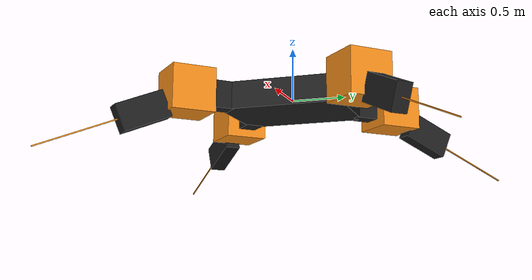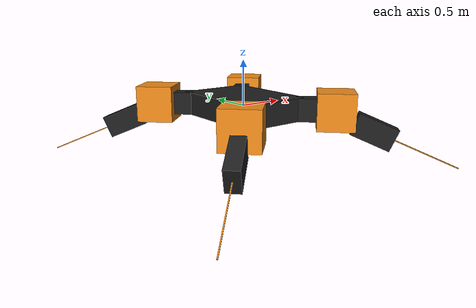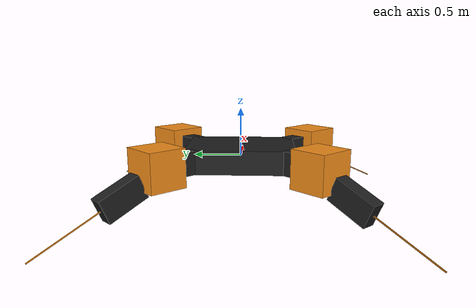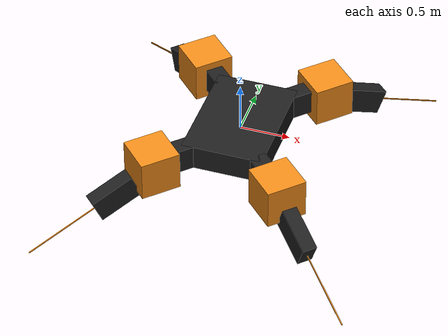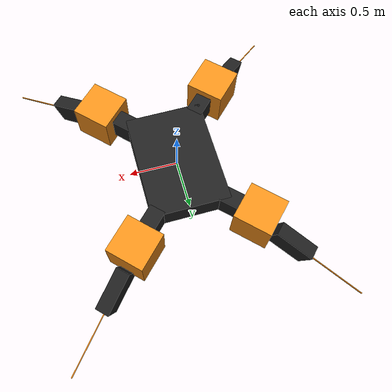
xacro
<?xml version="1.0"?>
<!-- Revolute-Revolute Manipulator -->
<robot name="rupert" xmlns:xacro="http://www.ros.org/wiki/xacro">

  <!-- Constants for robot dimensions -->
  <xacro:property name="PI" value="3.1415926535897931"/>
  <xacro:property name="mass" value="1" /> <!-- arbitrary value for mass -->
  <xacro:property name="width" value="0.1" /> <!-- Square dimensions (widthxwidth) of beams -->
  <!--Body -->
  <xacro:property name="mass_body" value="1" />
  <xacro:property name="body_width" value="0.81" /> <!-- width of body -->
  <xacro:property name="body_length" value="1.13" /> <!-- length of body -->
  <xacro:property name="body_height" value="0.25" /> <!-- height of body -->

  <!--block -->
  <xacro:property name="mass_block" value="1" />
  <xacro:property name="block_width" value="0.22" /> <!-- width of block -->
  <xacro:property name="block_length" value="0.17" /> <!-- length of  block -->
  <xacro:property name="block_height" value="0.25" /> <!-- height of block -->

  <!--Hip -->
  <xacro:property name="mass_hip" value="1" />
  <xacro:property name="hip_width" value="0.4" /> <!-- width of hip -->
  <xacro:property name="hip_length" value="0.4" /> <!-- length of hip -->
  <xacro:property name="hip_height" value="0.4" /> <!-- height of hip -->

  <!--leg -->
  <xacro:property name="mass_leg" value="1" />
  <xacro:property name="leg_width" value="0.25" /> <!-- width of leg -->
  <xacro:property name="leg_length" value="0.15" /> <!-- length of leg -->
  <xacro:property name="leg_height" value="0.45" /> <!-- height of leg -->

    <!--foot -->
  <xacro:property name="mass_foot" value="1" />
  <xacro:property name="foot_width" value="0.01" /> <!-- width of foot -->
  <xacro:property name="foot_length" value="0.01" /> <!-- length of foot -->
  <xacro:property name="foot_height" value="0.75" /> <!-- height of foot -->

  <xacro:property name="height1" value="0.0001" /> <!-- Link 1 -->
  <xacro:property name="height2" value="0.0005" /> <!-- Link 2 -->
  <xacro:property name="height3" value="0.0005" /> <!-- Link 3 -->
  <xacro:property name="camera_link" value="0.0005" /> <!-- Size of square 'camera' box -->
  <xacro:property name="axel_offset" value="0.5" /> <!-- Space btw top of beam and the each joint -->

  <!-- Import all Gazebo-customization elements, including Gazebo colors -->
  <xacro:include filename="$(find rupert_learns)/urdf/ruperttwo0.gazebo" />
  <!-- Import Rviz colors -->
  <xacro:include filename="$(find rupert_learns)/urdf/materials.xacro" />

  <!-- Used for fixing robot to Gazebo 'base_link' -->

<link name = "dummy"/>

<joint name="dummy_joint" type="fixed">
    <parent link="dummy"/>
    <child link="body"/>
</joint>

<link name="body">
    <collision>
      <origin xyz="0 0 0" rpy="0 0 0"/>
      <geometry>
  <box size="${body_width} ${body_length} ${body_height}"/>
      </geometry>
    </collision>

    <visual>
      <origin xyz="0 0 0" rpy="0 0 0"/>
      <geometry>
  <box size="${body_width} ${body_length} ${body_height}"/>
      </geometry>
      <material name="black"/>
    </visual>

    <inertial>
      <origin xyz="0 0 0" rpy="0 0 0"/>
      <mass value="${mass_body}"/>
      <inertia
    ixx="${mass_body / 12.0*(body_length*body_length + body_height*body_height)}" ixy="0.0" ixz="0.0"
    iyy="${mass_body / 12.0 * (body_height*body_height + body_width*body_width)}" iyz="0.0"
    izz="${mass_body / 12.0 * (body_width*body_width + body_length*body_length)}"/>
    </inertial>
  </link>

  <link name="block1">
    <collision>
      <origin xyz="0 0 0" rpy="0 0 0"/>
      <geometry>
  <box size="${block_width} ${block_length} ${block_height}"/>
      </geometry>
    </collision>

    <visual>
      <origin xyz="0 0 0" rpy="0 0 0"/>
      <geometry>
  <box size="${block_width} ${block_length} ${block_height}"/>
      </geometry>
      <material name="black"/>
    </visual>

    <inertial>
      <origin xyz="0 0 0" rpy="0 0 0"/>
      <mass value="${mass_block}"/>
      <inertia
    ixx="${mass_block / 12.0*(block_length*block_length + block_height*block_height)}" ixy="0.0" ixz="0.0"
    iyy="${mass_block / 12.0 * (block_height*block_height + block_width*block_width)}" iyz="0.0"
    izz="${mass_block / 12.0 * (block_width*block_width + block_length*block_length)}"/>
    </inertial>
  </link>

    <link name="block2">
    <collision>
      <origin xyz="0 0 0" rpy="0 0 0"/>
      <geometry>
  <box size="${block_width} ${block_length} ${block_height}"/>
      </geometry>
    </collision>

    <visual>
      <origin xyz="0 0 0" rpy="0 0 0"/>
      <geometry>
  <box size="${block_width} ${block_length} ${block_height}"/>
      </geometry>
      <material name="black"/>
    </visual>

    <inertial>
      <origin xyz="0 0 0" rpy="0 0 0"/>
      <mass value="${mass_block}"/>
      <inertia
    ixx="${mass_block / 12.0*(block_length*block_length + block_height*block_height)}" ixy="0.0" ixz="0.0"
    iyy="${mass_block / 12.0 * (block_height*block_height + block_width*block_width)}" iyz="0.0"
    izz="${mass_block / 12.0 * (block_width*block_width + block_length*block_length)}"/>
    </inertial>
  </link>

    <link name="block3">
    <collision>
      <origin xyz="0 0 0" rpy="0 0 0"/>
      <geometry>
  <box size="${block_width} ${block_length} ${block_height}"/>
      </geometry>
    </collision>

    <visual>
      <origin xyz="0 0 0" rpy="0 0 0"/>
      <geometry>
  <box size="${block_width} ${block_length} ${block_height}"/>
      </geometry>
      <material name="black"/>
    </visual>

    <inertial>
      <origin xyz="0 0 0" rpy="0 0 0"/>
      <mass value="${mass_block}"/>
      <inertia
    ixx="${mass_block / 12.0*(block_length*block_length + block_height*block_height)}" ixy="0.0" ixz="0.0"
    iyy="${mass_block / 12.0 * (block_height*block_height + block_width*block_width)}" iyz="0.0"
    izz="${mass_block / 12.0 * (block_width*block_width + block_length*block_length)}"/>
    </inertial>
  </link>

    <link name="block4">
    <collision>
      <origin xyz="0 0 0" rpy="0 0 0"/>
      <geometry>
  <box size="${block_width} ${block_length} ${block_height}"/>
      </geometry>
    </collision>

    <visual>
      <origin xyz="0 0 0" rpy="0 0 0"/>
      <geometry>
  <box size="${block_width} ${block_length} ${block_height}"/>
      </geometry>
      <material name="black"/>
    </visual>

    <inertial>
      <origin xyz="0 0 0" rpy="0 0 0"/>
      <mass value="${mass_block}"/>
      <inertia
    ixx="${mass_block / 12.0*(block_length*block_length + block_height*block_height)}" ixy="0.0" ixz="0.0"
    iyy="${mass_block / 12.0 * (block_height*block_height + block_width*block_width)}" iyz="0.0"
    izz="${mass_block / 12.0 * (block_width*block_width + block_length*block_length)}"/>
    </inertial>
  </link>

  <joint name="block_j1" type="fixed">
    <parent link="body"/>
    <child link="block1"/>
    <origin xyz="${body_width/2} ${body_length/2} 0" rpy="0 0 0.785398"/>
    <axis xyz="0 0 1" />
  </joint>

  <joint name="block_j2" type="fixed">
    <parent link="body"/>
    <child link="block2"/>
    <origin xyz="${body_width/2} ${-body_length/2} 0" rpy="0 0 -0.785398"/>
    <axis xyz="0 0 1" />
  </joint>

  <joint name="block_j3" type="fixed">
    <parent link="body"/>
    <child link="block3"/>
    <origin xyz="${-body_width/2} ${body_length/2} 0" rpy="0 0 -0.785398"/>
    <axis xyz="0 0 1" />
  </joint>

  <joint name="block_j4" type="fixed">
    <parent link="body"/>
    <child link="block4"/>
    <origin xyz="${-body_width/2} ${-body_length/2} 0" rpy="0 0 0.785398"/>
    <axis xyz="0 0 1" />
  </joint>

  <joint name="hip_j1" type="revolute">
    <parent link="block1"/>
    <child link="hip1"/>
    <origin xyz="${block_width/2} 0 0" rpy="0 0 -3.14"/>
    <axis xyz="0 0 1" />
    <limit effort="300" velocity="1.0" lower="-1.7" upper="1.7"/>
  </joint>

    <joint name="hip_j2" type="revolute">
    <parent link="block2"/>
    <child link="hip2"/>
    <origin xyz="${block_width/2} 0 0" rpy="0 0 -3.14"/>
    <axis xyz="0 0 1" />
    <limit effort="300" velocity="1.0" lower="-1.7" upper="1.7"/>
  </joint>

    <joint name="hip_j3" type="revolute">
    <parent link="block3"/>
    <child link="hip3"/>
    <origin xyz="${-block_width/2} 0 0" rpy="0 0 0"/>
    <axis xyz="0 0 1" />
    <limit effort="300" velocity="1.0" lower="-1.7" upper="1.7"/>
  </joint>

    <joint name="hip_j4" type="revolute">
    <parent link="block4"/>
    <child link="hip4"/>
    <origin xyz="${-block_width/2} 0 0" rpy="0 0 0"/>
    <axis xyz="0 0 1" />
    <limit effort="300" velocity="1.0" lower="-1.7" upper="1.7"/>
  </joint>

  <!-- Base Link -->
  <link name="hip1">
    <collision>
      <origin xyz="${-hip_width/2} 0 0" rpy="0 0 0"/>
      <geometry>
	<box size="${hip_width} ${hip_length} ${hip_height}"/>
      </geometry>
    </collision>

    <visual>
      <origin xyz="${-hip_width/2} 0 0" rpy="0 0 0"/>
      <geometry>
	<box size="${hip_width} ${hip_length} ${hip_height}"/>
      </geometry>
      <material name="orange"/>
    </visual>

    <inertial>
      <origin xyz="${-hip_width/2} 0 0" rpy="0 0 0"/>
      <mass value="${mass_hip}"/>
      <inertia
	  ixx="${mass_hip / 12.0 * (hip_length*hip_length + hip_height*hip_height)}" ixy="0.0" ixz="0.0"
	  iyy="${mass_hip / 12.0 * (hip_height*hip_height + hip_width*hip_width)}" iyz="0.0"
	  izz="${mass_hip / 12.0 * (hip_length*hip_length + hip_width*hip_width)}"/>
    </inertial>
  </link>

    <link name="hip2">
    <collision>
      <origin xyz="${-hip_width/2} 0 0" rpy="0 0 0"/>
      <geometry>
  <box size="${hip_width} ${hip_length} ${hip_height}"/>
      </geometry>
    </collision>

    <visual>
      <origin xyz="${-hip_width/2} 0 0" rpy="0 0 0"/>
      <geometry>
  <box size="${hip_width} ${hip_length} ${hip_height}"/>
      </geometry>
      <material name="orange"/>
    </visual>

    <inertial>
      <origin xyz="${-hip_width/2} 0 0" rpy="0 0 0"/>
      <mass value="${mass_hip}"/>
      <inertia
    ixx="${mass_hip / 12.0 * (hip_length*hip_length + hip_height*hip_height)}" ixy="0.0" ixz="0.0"
    iyy="${mass_hip / 12.0 * (hip_height*hip_height + hip_width*hip_width)}" iyz="0.0"
    izz="${mass_hip / 12.0 * (hip_length*hip_length + hip_width*hip_width)}"/>
    </inertial>
  </link>

    <link name="hip3">
    <collision>
      <origin xyz="${-hip_width/2} 0 0" rpy="0 0 0"/>
      <geometry>
  <box size="${hip_width} ${hip_length} ${hip_height}"/>
      </geometry>
    </collision>

    <visual>
      <origin xyz="${-hip_width/2} 0 0" rpy="0 0 0"/>
      <geometry>
  <box size="${hip_width} ${hip_length} ${hip_height}"/>
      </geometry>
      <material name="orange"/>
    </visual>

    <inertial>
      <origin xyz="${-hip_width/2} 0 0" rpy="0 0 0"/>
      <mass value="${mass_hip}"/>
      <inertia
    ixx="${mass_hip / 12.0 * (hip_length*hip_length + hip_height*hip_height)}" ixy="0.0" ixz="0.0"
    iyy="${mass_hip / 12.0 * (hip_height*hip_height + hip_width*hip_width)}" iyz="0.0"
    izz="${mass_hip / 12.0 * (hip_length*hip_length + hip_width*hip_width)}"/>
    </inertial>
  </link>

    <link name="hip4">
    <collision>
      <origin xyz="${-hip_width/2} 0 0" rpy="0 0 0"/>
      <geometry>
  <box size="${hip_width} ${hip_length} ${hip_height}"/>
      </geometry>
    </collision>

    <visual>
      <origin xyz="${-hip_width/2} 0 0" rpy="0 0 0"/>
      <geometry>
  <box size="${hip_width} ${hip_length} ${hip_height}"/>
      </geometry>
      <material name="orange"/>
    </visual>

    <inertial>
      <origin xyz="${-hip_width/2} 0 0" rpy="0 0 0"/>
      <mass value="${mass_hip}"/>
      <inertia
    ixx="${mass_hip / 12.0 * (hip_length*hip_length + hip_height*hip_height)}" ixy="0.0" ixz="0.0"
    iyy="${mass_hip / 12.0 * (hip_height*hip_height + hip_width*hip_width)}" iyz="0.0"
    izz="${mass_hip / 12.0 * (hip_length*hip_length + hip_width*hip_width)}"/>
    </inertial>
  </link>

  <joint name="knee_j1" type="revolute">
    <parent link="hip1"/>
    <child link="leg1"/>
    <origin xyz="${-hip_width} 0 ${-hip_height/3}" rpy="0 ${-PI/2-0.4} 0"/>
    <axis xyz="0 1 0"/>
    <dynamics damping="0.7"/>
    <limit effort="300" velocity="1.0" lower="-1.7" upper="1.7"/>
  </joint>

  <joint name="knee_j2" type="revolute">
    <parent link="hip2"/>
    <child link="leg2"/>
    <origin xyz="${-hip_width} 0 ${-hip_height/3}" rpy="0 ${-PI/2-0.4} 0"/>
    <axis xyz="0 1 0"/>
    <dynamics damping="0.7"/>
    <limit effort="300" velocity="1.0" lower="-1.7" upper="1.7"/>
  </joint>

  <joint name="knee_j3" type="revolute">
    <parent link="hip3"/>
    <child link="leg3"/>
    <origin xyz="${-hip_width} 0 ${-hip_height/3}" rpy="0 ${-PI/2-0.4} 0"/>
    <axis xyz="0 1 0"/>
    <dynamics damping="0.7"/>
    <limit effort="300" velocity="1.0" lower="-1.7" upper="1.7"/>
  </joint>

  <joint name="knee_j4" type="revolute">
    <parent link="hip4"/>
    <child link="leg4"/>
    <origin xyz="${-hip_width} 0 ${-hip_height/3}" rpy="0 ${-PI/2-0.4} 0"/>
    <axis xyz="0 1 0"/>
    <dynamics damping="0.7"/>
    <limit effort="300" velocity="1.0" lower="-1.7" upper="1.7"/>
  </joint>

  <!-- Middle Link -->
  <link name="leg1">
    <collision>
      <origin xyz="0 0 ${leg_height/2}" rpy="0 0 0"/>
      <geometry>
	<box size="${leg_width} ${leg_length} ${leg_height}"/>
      </geometry>
    </collision>

    <visual>
      <origin xyz="0 0 ${leg_height/2}" rpy="0 0 0"/>
      <geometry>
	<box size="${leg_width} ${leg_length} ${leg_height}"/>
      </geometry>
      <material name="black"/>
    </visual>

    <inertial>
      <origin xyz="0 0 ${leg_height/2}" rpy="0 0 0"/>
      <mass value="${mass_leg}"/>
      <inertia
	  ixx="${mass_leg / 12.0 * (leg_length*leg_length + leg_height*leg_height)}" ixy="0.0" ixz="0.0"
	  iyy="${mass_leg / 12.0 * (leg_height*leg_height + leg_width*leg_width)}" iyz="0.0"
	  izz="${mass_leg / 12.0 * (leg_width*leg_width + leg_length*leg_length)}"/>
    </inertial>
  </link>

    <link name="leg2">
    <collision>
      <origin xyz="0 0 ${leg_height/2}" rpy="0 0 0"/>
      <geometry>
  <box size="${leg_width} ${leg_length} ${leg_height}"/>
      </geometry>
    </collision>

    <visual>
      <origin xyz="0 0 ${leg_height/2}" rpy="0 0 0"/>
      <geometry>
  <box size="${leg_width} ${leg_length} ${leg_height}"/>
      </geometry>
      <material name="black"/>
    </visual>

    <inertial>
      <origin xyz="0 0 ${leg_height/2}" rpy="0 0 0"/>
      <mass value="${mass_leg}"/>
      <inertia
    ixx="${mass_leg / 12.0 * (leg_length*leg_length + leg_height*leg_height)}" ixy="0.0" ixz="0.0"
    iyy="${mass_leg / 12.0 * (leg_height*leg_height + leg_width*leg_width)}" iyz="0.0"
    izz="${mass_leg / 12.0 * (leg_width*leg_width + leg_length*leg_length)}"/>
    </inertial>
  </link>

  <link name="leg3">
    <collision>
      <origin xyz="0 0 ${leg_height/2}" rpy="0 0 0"/>
      <geometry>
  <box size="${leg_width} ${leg_length} ${leg_height}"/>
      </geometry>
    </collision>

    <visual>
      <origin xyz="0 0 ${leg_height/2}" rpy="0 0 0"/>
      <geometry>
  <box size="${leg_width} ${leg_length} ${leg_height}"/>
      </geometry>
      <material name="black"/>
    </visual>

    <inertial>
      <origin xyz="0 0 ${leg_height/2}" rpy="0 0 0"/>
      <mass value="${mass_leg}"/>
      <inertia
    ixx="${mass_leg / 12.0 * (leg_length*leg_length + leg_height*leg_height)}" ixy="0.0" ixz="0.0"
    iyy="${mass_leg / 12.0 * (leg_height*leg_height + leg_width*leg_width)}" iyz="0.0"
    izz="${mass_leg / 12.0 * (leg_width*leg_width + leg_length*leg_length)}"/>
    </inertial>
  </link>

  <link name="leg4">
    <collision>
      <origin xyz="0 0 ${leg_height/2}" rpy="0 0 0"/>
      <geometry>
  <box size="${leg_width} ${leg_length} ${leg_height}"/>
      </geometry>
    </collision>

    <visual>
      <origin xyz="0 0 ${leg_height/2}" rpy="0 0 0"/>
      <geometry>
  <box size="${leg_width} ${leg_length} ${leg_height}"/>
      </geometry>
      <material name="black"/>
    </visual>

    <inertial>
      <origin xyz="0 0 ${leg_height/2}" rpy="0 0 0"/>
      <mass value="${mass_leg}"/>
      <inertia
    ixx="${mass_leg / 12.0 * (leg_length*leg_length + leg_height*leg_height)}" ixy="0.0" ixz="0.0"
    iyy="${mass_leg / 12.0 * (leg_height*leg_height + leg_width*leg_width)}" iyz="0.0"
    izz="${mass_leg / 12.0 * (leg_width*leg_width + leg_length*leg_length)}"/>
    </inertial>
  </link>

  <joint name="ankle_j1" type="revolute">
    <parent link="leg1"/>
    <child link="foot1"/>
    <origin xyz="0 0 ${leg_height}" rpy="0 0 0"/>
    <axis xyz="0 1 0"/>
    <dynamics damping="0.7"/>
    <limit effort="300" velocity="1.0" lower="-1.7" upper="1.7"/>
  </joint>

  <joint name="ankle_j2" type="revolute">
    <parent link="leg2"/>
    <child link="foot2"/>
    <origin xyz="0 0 ${leg_height}" rpy="0 0 0"/>
    <axis xyz="0 1 0"/>
    <dynamics damping="0.7"/>
    <limit effort="300" velocity="1.0" lower="-1.7" upper="1.7"/>
  </joint>

  <joint name="ankle_j3" type="revolute">
    <parent link="leg3"/>
    <child link="foot3"/>
    <origin xyz="0 0 ${leg_height}" rpy="0 0 0"/>
    <axis xyz="0 1 0"/>
    <dynamics damping="0.7"/>
    <limit effort="300" velocity="1.0" lower="-1.7" upper="1.7"/>
  </joint>

  <joint name="ankle_j4" type="revolute">
    <parent link="leg4"/>
    <child link="foot4"/>
    <origin xyz="0 0 ${leg_height}" rpy="0 0 0"/>
    <axis xyz="0 1 0"/>
    <dynamics damping="0.7"/>
    <limit effort="300" velocity="1.0" lower="-1.7" upper="1.7"/>
  </joint>

  <!-- Top Link -->
  <link name="foot1">
    <collision>
      <origin xyz="0 0 ${foot_height/2}" rpy="0 0 0"/>
      <geometry>
	<box size="${foot_width} ${foot_length} ${foot_height}"/>
      </geometry>
    </collision>

    <visual>
      <origin xyz="0 0 ${foot_height/2}" rpy="0 0 0"/>
      <geometry>
	<box size="${foot_width} ${foot_length} ${foot_height}"/>
      </geometry>
      <material name="orange"/>
    </visual>

    <inertial>
      <origin xyz="0 0 ${foot_height/2}" rpy="0 0 0"/>
      <mass value="${mass_foot}"/>
      <inertia
	  ixx="${mass_foot / 12.0 * (foot_length*foot_length + foot_height*foot_height)}" ixy="0.0" ixz="0.0"
	  iyy="${mass_foot / 12.0 * (foot_width*foot_width + foot_height*foot_height)}" iyz="0.0"
	  izz="${mass_foot / 12.0 * (foot_width*foot_width + foot_length*foot_length)}"/>
    </inertial>
  </link>

    <link name="foot2">
    <collision>
      <origin xyz="0 0 ${foot_height/2}" rpy="0 0 0"/>
      <geometry>
  <box size="${foot_width} ${foot_length} ${foot_height}"/>
      </geometry>
    </collision>

    <visual>
      <origin xyz="0 0 ${foot_height/2}" rpy="0 0 0"/>
      <geometry>
  <box size="${foot_width} ${foot_length} ${foot_height}"/>
      </geometry>
      <material name="orange"/>
    </visual>

    <inertial>
      <origin xyz="0 0 ${foot_height/2}" rpy="0 0 0"/>
      <mass value="${mass_foot}"/>
      <inertia
    ixx="${mass_foot / 12.0 * (foot_length*foot_length + foot_height*foot_height)}" ixy="0.0" ixz="0.0"
    iyy="${mass_foot / 12.0 * (foot_width*foot_width + foot_height*foot_height)}" iyz="0.0"
    izz="${mass_foot / 12.0 * (foot_width*foot_width + foot_length*foot_length)}"/>
    </inertial>
  </link>

    <link name="foot3">
    <collision>
      <origin xyz="0 0 ${foot_height/2}" rpy="0 0 0"/>
      <geometry>
  <box size="${foot_width} ${foot_length} ${foot_height}"/>
      </geometry>
    </collision>

    <visual>
      <origin xyz="0 0 ${foot_height/2}" rpy="0 0 0"/>
      <geometry>
  <box size="${foot_width} ${foot_length} ${foot_height}"/>
      </geometry>
      <material name="orange"/>
    </visual>

    <inertial>
      <origin xyz="0 0 ${foot_height/2}" rpy="0 0 0"/>
      <mass value="${mass_foot}"/>
      <inertia
    ixx="${mass_foot / 12.0 * (foot_length*foot_length + foot_height*foot_height)}" ixy="0.0" ixz="0.0"
    iyy="${mass_foot / 12.0 * (foot_width*foot_width + foot_height*foot_height)}" iyz="0.0"
    izz="${mass_foot / 12.0 * (foot_width*foot_width + foot_length*foot_length)}"/>
    </inertial>
  </link>

    <link name="foot4">
    <collision>
      <origin xyz="0 0 ${foot_height/2}" rpy="0 0 0"/>
      <geometry>
  <box size="${foot_width} ${foot_length} ${foot_height}"/>
      </geometry>
    </collision>

    <visual>
      <origin xyz="0 0 ${foot_height/2}" rpy="0 0 0"/>
      <geometry>
  <box size="${foot_width} ${foot_length} ${foot_height}"/>
      </geometry>
      <material name="orange"/>
    </visual>

    <inertial>
      <origin xyz="0 0 ${foot_height/2}" rpy="0 0 0"/>
      <mass value="${mass_foot}"/>
      <inertia
    ixx="${mass_foot / 12.0 * (foot_length*foot_length + foot_height*foot_height)}" ixy="0.0" ixz="0.0"
    iyy="${mass_foot / 12.0 * (foot_width*foot_width + foot_height*foot_height)}" iyz="0.0"
    izz="${mass_foot / 12.0 * (foot_width*foot_width + foot_length*foot_length)}"/>
    </inertial>
  </link>

  <transmission name="tran1">
    <type>transmission_interface/SimpleTransmission</type>
    <joint name="hip_j1">
      <hardwareInterface>hardware_interface/EffortJointInterface</hardwareInterface>
    </joint>
    <actuator name="motor1">
      <hardwareInterface>hardware_interface/EffortJointInterface</hardwareInterface>
      <mechanicalReduction>1</mechanicalReduction>
    </actuator>
  </transmission>

  <transmission name="tran2">
    <type>transmission_interface/SimpleTransmission</type>
    <joint name="hip_j2">
      <hardwareInterface>hardware_interface/EffortJointInterface</hardwareInterface>
    </joint>
    <actuator name="motor2">
      <hardwareInterface>hardware_interface/EffortJointInterface</hardwareInterface>
      <mechanicalReduction>1</mechanicalReduction>
    </actuator>
  </transmission>

  <transmission name="tran3">
    <type>transmission_interface/SimpleTransmission</type>
    <joint name="hip_j3">
      <hardwareInterface>hardware_interface/EffortJointInterface</hardwareInterface>
    </joint>
    <actuator name="motor3">
      <hardwareInterface>hardware_interface/EffortJointInterface</hardwareInterface>
      <mechanicalReduction>1</mechanicalReduction>
    </actuator>
  </transmission>

  <transmission name="tran4">
    <type>transmission_interface/SimpleTransmission</type>
    <joint name="hip_j4">
      <hardwareInterface>hardware_interface/EffortJointInterface</hardwareInterface>
    </joint>
    <actuator name="motor4">
      <hardwareInterface>hardware_interface/EffortJointInterface</hardwareInterface>
      <mechanicalReduction>1</mechanicalReduction>
    </actuator>
  </transmission>

  <transmission name="tran5">
    <type>transmission_interface/SimpleTransmission</type>
    <joint name="knee_j1">
      <hardwareInterface>hardware_interface/EffortJointInterface</hardwareInterface>
    </joint>
    <actuator name="motor5">
      <hardwareInterface>hardware_interface/EffortJointInterface</hardwareInterface>
      <mechanicalReduction>1</mechanicalReduction>
    </actuator>
  </transmission>

  <transmission name="tran6">
    <type>transmission_interface/SimpleTransmission</type>
    <joint name="knee_j2">
      <hardwareInterface>hardware_interface/EffortJointInterface</hardwareInterface>
    </joint>
    <actuator name="motor6">
      <hardwareInterface>hardware_interface/EffortJointInterface</hardwareInterface>
      <mechanicalReduction>1</mechanicalReduction>
    </actuator>
  </transmission>

  <transmission name="tran7">
    <type>transmission_interface/SimpleTransmission</type>
    <joint name="knee_j3">
      <hardwareInterface>hardware_interface/EffortJointInterface</hardwareInterface>
    </joint>
    <actuator name="motor7">
      <hardwareInterface>hardware_interface/EffortJointInterface</hardwareInterface>
      <mechanicalReduction>1</mechanicalReduction>
    </actuator>
  </transmission>

  <transmission name="tran8">
    <type>transmission_interface/SimpleTransmission</type>
    <joint name="knee_j4">
      <hardwareInterface>hardware_interface/EffortJointInterface</hardwareInterface>
    </joint>
    <actuator name="motor8">
      <hardwareInterface>hardware_interface/EffortJointInterface</hardwareInterface>
      <mechanicalReduction>1</mechanicalReduction>
    </actuator>
  </transmission>

  <transmission name="tran9">
    <type>transmission_interface/SimpleTransmission</type>
    <joint name="ankle_j1">
      <hardwareInterface>hardware_interface/EffortJointInterface</hardwareInterface>
    </joint>
    <actuator name="motor9">
      <hardwareInterface>hardware_interface/EffortJointInterface</hardwareInterface>
      <mechanicalReduction>1</mechanicalReduction>
    </actuator>
  </transmission>

  <transmission name="tran10">
    <type>transmission_interface/SimpleTransmission</type>
    <joint name="ankle_j2">
      <hardwareInterface>hardware_interface/EffortJointInterface</hardwareInterface>
    </joint>
    <actuator name="motor10">
      <hardwareInterface>hardware_interface/EffortJointInterface</hardwareInterface>
      <mechanicalReduction>1</mechanicalReduction>
    </actuator>
  </transmission>

  <transmission name="tran11">
    <type>transmission_interface/SimpleTransmission</type>
    <joint name="ankle_j3">
      <hardwareInterface>hardware_interface/EffortJointInterface</hardwareInterface>
    </joint>
    <actuator name="motor11">
      <hardwareInterface>hardware_interface/EffortJointInterface</hardwareInterface>
      <mechanicalReduction>1</mechanicalReduction>
    </actuator>
  </transmission>

  <transmission name="tran12">
    <type>transmission_interface/SimpleTransmission</type>
    <joint name="ankle_j4">
      <hardwareInterface>hardware_interface/EffortJointInterface</hardwareInterface>
    </joint>
    <actuator name="motor12">
      <hardwareInterface>hardware_interface/EffortJointInterface</hardwareInterface>
      <mechanicalReduction>1</mechanicalReduction>
    </actuator>
  </transmission>

</robot>
